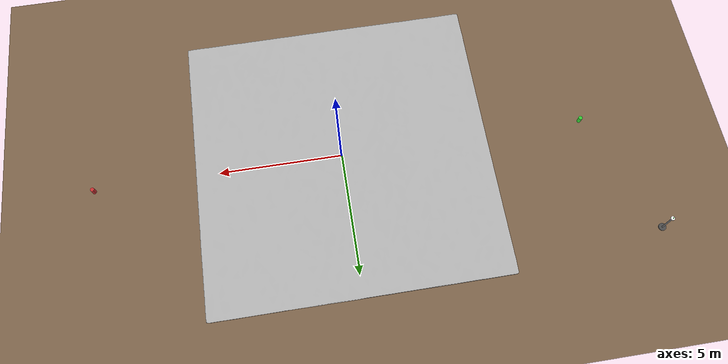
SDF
<?xml version="1.0"?>
<sdf version="1.9">
  <world name="cotton_field">

    <!-- Physics -->
    <physics name="1ms" type="ignored">
      <max_step_size>0.001</max_step_size>
      <real_time_factor>1.0</real_time_factor>
    </physics>

    <!-- Plugins -->
    <plugin filename="gz-sim-physics-system" name="gz::sim::systems::Physics"/>
    <plugin filename="gz-sim-user-commands-system" name="gz::sim::systems::UserCommands"/>
    <plugin filename="gz-sim-scene-broadcaster-system" name="gz::sim::systems::SceneBroadcaster"/>
    <plugin filename="gz-sim-sensors-system" name="gz::sim::systems::Sensors">
      <render_engine>ogre2</render_engine>
    </plugin>
    <plugin filename="gz-sim-imu-system" name="gz::sim::systems::Imu"/>
    <plugin filename="gz-sim-navsat-system" name="gz::sim::systems::NavSat"/>

    <!-- Spherical coordinates for NavSat (Ahmedabad, India) -->
    <spherical_coordinates>
      <surface_model>EARTH_WGS84</surface_model>
      <world_frame_orientation>ENU</world_frame_orientation>
      <latitude_deg>23.0225</latitude_deg>
      <longitude_deg>72.5714</longitude_deg>
      <elevation>53.0</elevation>
      <heading_deg>0</heading_deg>
    </spherical_coordinates>

    <!-- Scene -->
    <scene>
      <ambient>0.8 0.8 0.8 1.0</ambient>
      <background>0.6 0.8 1.0 1</background>
      <sky></sky>
    </scene>

    <!-- Sun -->
    <light type="directional" name="sun">
      <cast_shadows>true</cast_shadows>
      <pose>0 0 10 0 0 0</pose>
      <diffuse>0.9 0.9 0.9 1</diffuse>
      <specular>0.2 0.2 0.2 1</specular>
      <attenuation>
        <range>1000</range>
        <constant>0.9</constant>
        <linear>0.01</linear>
        <quadratic>0.001</quadratic>
      </attenuation>
      <direction>-0.5 0.1 -0.9</direction>
    </light>

    <!-- Ground Plane - Flat Soil/Dirt -->
    <model name="ground_plane">
      <static>true</static>
      <pose>0 0 0 0 0 0</pose>
      <link name="link">
        <collision name="collision">
          <geometry>
            <plane>
              <normal>0 0 1</normal>
              <size>100 100</size>
            </plane>
          </geometry>
          <surface>
            <friction>
              <ode>
                <mu>1.0</mu>
                <mu2>1.0</mu2>
              </ode>
            </friction>
          </surface>
        </collision>
        <visual name="visual">
          <geometry>
            <plane>
              <normal>0 0 1</normal>
              <size>100 100</size>
            </plane>
          </geometry>
          <material>
            <ambient>0.4 0.3 0.2 1</ambient>
            <diffuse>0.5 0.4 0.3 1</diffuse>
            <specular>0.1 0.1 0.1 1</specular>
          </material>
        </visual>
      </link>
    </model>

    <!-- Cotton Field Rows (collisions disabled for testing) -->
    <!-- Rows centered at x=0, spanning x=-10 to x=+10 (20m long) -->
    <!-- Robot spawns at x=25, well clear of rows -->

    <!-- Field Boundary Markers - visual reference with labels -->

    <!-- START marker: green pole -->
    <model name="field_marker_start">
      <static>true</static>
      <pose>-10 0 0 0 0 0</pose>
      <link name="pole">
        <visual name="pole_visual">
          <pose>0 0 0.15 0 0 0</pose>
          <geometry>
            <cylinder>
              <radius>0.08</radius>
              <length>0.3</length>
            </cylinder>
          </geometry>
          <material>
            <ambient>0.1 0.7 0.1 1</ambient>
            <diffuse>0.2 0.8 0.2 1</diffuse>
          </material>
        </visual>
      </link>
    </model>

    <!-- END marker: red pole -->
    <model name="field_marker_end">
      <static>true</static>
      <pose>10 0 0 0 0 0</pose>
      <link name="pole">
        <visual name="pole_visual">
          <pose>0 0 0.15 0 0 0</pose>
          <geometry>
            <cylinder>
              <radius>0.08</radius>
              <length>0.3</length>
            </cylinder>
          </geometry>
          <material>
            <ambient>0.7 0.1 0.1 1</ambient>
            <diffuse>0.8 0.2 0.2 1</diffuse>
          </material>
        </visual>
      </link>
    </model>

    <!-- RTK Base Station — fixed GPS reference at known coordinates -->
    <!-- Placed at edge of field, tripod + antenna visual -->

    <!-- Soil Terrain Surface                                          -->

    <include>
      <name>soil_terrain</name>
      <uri>model://soil_terrain</uri>
      <pose>0 0 0.1 0 0 0</pose>
    </include>

    <model name="rtk_base_station">
      <static>true</static>
      <pose>-12 5 0 0 0 0</pose>
      <link name="base_link">
        <!-- Tripod legs (visual only) -->
        <visual name="tripod_visual">
          <pose>0 0 0.5 0 0 0</pose>
          <geometry>
            <cylinder>
              <radius>0.03</radius>
              <length>1.0</length>
            </cylinder>
          </geometry>
          <material>
            <ambient>0.3 0.3 0.3 1</ambient>
            <diffuse>0.4 0.4 0.4 1</diffuse>
          </material>
        </visual>
        <!-- GPS Antenna dome -->
        <visual name="antenna_visual">
          <pose>0 0 1.1 0 0 0</pose>
          <geometry>
            <cylinder>
              <radius>0.08</radius>
              <length>0.06</length>
            </cylinder>
          </geometry>
          <material>
            <ambient>0.9 0.9 0.9 1</ambient>
            <diffuse>1.0 1.0 1.0 1</diffuse>
          </material>
        </visual>
        <!-- Status LED (green = active) -->
        <visual name="led_visual">
          <pose>0 0 1.16 0 0 0</pose>
          <geometry>
            <sphere>
              <radius>0.02</radius>
            </sphere>
          </geometry>
          <material>
            <ambient>0.1 0.9 0.1 1</ambient>
            <diffuse>0.2 1.0 0.2 1</diffuse>
            <emissive>0.0 0.5 0.0 1</emissive>
          </material>
        </visual>
        <!-- Base plate -->
        <visual name="base_plate_visual">
          <pose>0 0 0.02 0 0 0</pose>
          <geometry>
            <cylinder>
              <radius>0.15</radius>
              <length>0.04</length>
            </cylinder>
          </geometry>
          <material>
            <ambient>0.2 0.2 0.2 1</ambient>
            <diffuse>0.3 0.3 0.3 1</diffuse>
          </material>
        </visual>
      </link>
    </model>

    <!-- Overhead camera for video recording (server-side) -->
    <model name="overhead_camera">
      <static>true</static>
      <!-- Centred over field, 25m up, looking straight down (pitch = +π/2) -->
      <pose>0 2.5 25 0 1.5708 0</pose>
      <link name="link">
        <sensor name="overhead_cam" type="camera">
          <always_on>true</always_on>
          <update_rate>30</update_rate>
          <visualize>false</visualize>
          <camera>
            <horizontal_fov>1.5708</horizontal_fov>
            <image>
              <width>1280</width>
              <height>720</height>
              <format>R8G8B8</format>
            </image>
            <clip>
              <near>0.1</near>
              <far>100</far>
            </clip>
          </camera>
          <plugin filename="gz-sim-camera-video-recorder-system"
                  name="gz::sim::systems::CameraVideoRecorder">
            <service>/overhead/record_video</service>
            <use_sim_time>true</use_sim_time>
            <fps>30</fps>
            <bitrate>4000000</bitrate>
          </plugin>
        </sensor>
      </link>
    </model>

  </world>
</sdf>

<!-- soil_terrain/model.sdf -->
<sdf version="1.9">
  <model name="soil_terrain">
    <static>true</static>
    <link name="terrain_link">
      <!-- Soil terrain OBJ mesh with texture -->
      <!-- Original mesh: ~2m x 2m (XZ), Y-up, 0.19m thick -->
      <!-- Rotate +90° X to convert Y-up to Z-up -->
      <!-- XZ scale 5 = ~10m x 10m coverage -->
      <!-- Y scale 0.5 = reduces thickness to ~0.09m -->
      <!-- 10% above ground, 90% buried below -->

      <!-- Collision: flat box so wheels ride on top -->
      <collision name="soil_collision">
        <pose>0 0 0 0 0 0</pose>
        <geometry>
          <box>
            <size>12 12 0.09</size>
          </box>
        </geometry>
        <surface>
          <friction>
            <ode>
              <mu>1.0</mu>
              <mu2>1.0</mu2>
            </ode>
          </friction>
        </surface>
      </collision>

      <!-- Visual: textured soil mesh -->
      <visual name="soil_visual">
        <pose>0 0 0 1.5708 0 0</pose>
        <geometry>
          <mesh>
            <uri>../../meshes/soil_terrain.obj</uri>
            <scale>6 0.5 6</scale>
          </mesh>
        </geometry>
      </visual>
    </link>
  </model>
</sdf>
